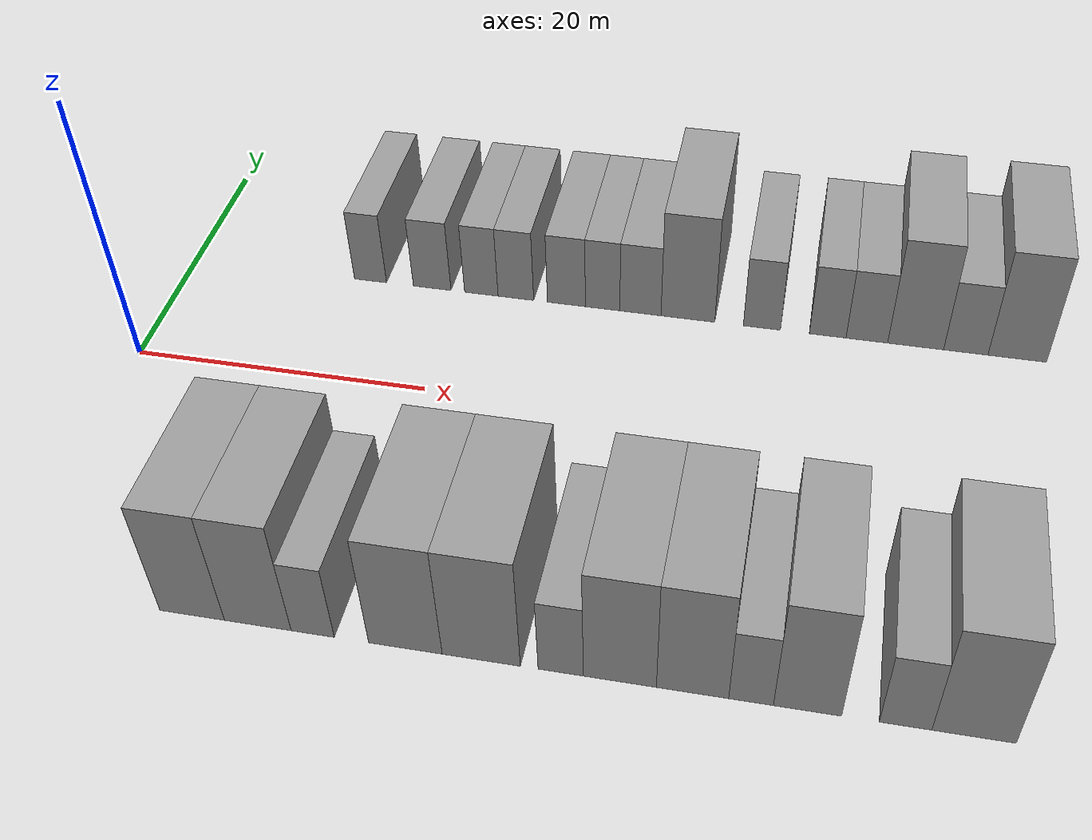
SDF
<sdf version="1.6">
 <world name="default">
  <model name="building_1">
   <static>1</static>
   <pose>13.2014 15.0000 0 0.000000 0.000000 1.570796</pose>
   <link name="link">
    <pose>0 0 3.00 0 0 0</pose>
    <collision name="collision"><geometry><box><size>10.0000 2.4029 6.0000</size></box></geometry></collision>
    <visual name="visual">
     <cast_shadows>0</cast_shadows>
     <geometry><box><size>10.0000 2.4029 6.0000</size></box></geometry>
     <material>
      <script>
       <uri>model://grey_wall/materials/scripts</uri>
       <uri>model://grey_wall/materials/textures</uri>
       <name>vrc/grey_wall</name>
      </script>
     </material>
    </visual>
   </link>
  </model>
  <model name="building_2">
   <static>1</static>
   <pose>17.7954 15.0000 0 0.000000 0.000000 1.570796</pose>
   <link name="link">
    <pose>0 0 3.00 0 0 0</pose>
    <collision name="collision"><geometry><box><size>10.0000 2.7850 6.0000</size></box></geometry></collision>
    <visual name="visual">
     <cast_shadows>0</cast_shadows>
     <geometry><box><size>10.0000 2.7850 6.0000</size></box></geometry>
     <material>
      <script>
       <uri>model://grey_wall/materials/scripts</uri>
       <uri>model://grey_wall/materials/textures</uri>
       <name>vrc/grey_wall</name>
      </script>
     </material>
    </visual>
   </link>
  </model>
  <model name="building_3">
   <static>1</static>
   <pose>21.4154 15.0000 0 0.000000 0.000000 1.570796</pose>
   <link name="link">
    <pose>0 0 3.00 0 0 0</pose>
    <collision name="collision"><geometry><box><size>10.0000 2.4551 6.0000</size></box></geometry></collision>
    <visual name="visual">
     <cast_shadows>0</cast_shadows>
     <geometry><box><size>10.0000 2.4551 6.0000</size></box></geometry>
     <material>
      <script>
       <uri>model://grey_wall/materials/scripts</uri>
       <uri>model://grey_wall/materials/textures</uri>
       <name>vrc/grey_wall</name>
      </script>
     </material>
    </visual>
   </link>
  </model>
  <model name="building_4">
   <static>1</static>
   <pose>23.9385 15.0000 0 0.000000 0.000000 1.570796</pose>
   <link name="link">
    <pose>0 0 3.00 0 0 0</pose>
    <collision name="collision"><geometry><box><size>10.0000 2.5911 6.0000</size></box></geometry></collision>
    <visual name="visual">
     <cast_shadows>0</cast_shadows>
     <geometry><box><size>10.0000 2.5911 6.0000</size></box></geometry>
     <material>
      <script>
       <uri>model://grey_wall/materials/scripts</uri>
       <uri>model://grey_wall/materials/textures</uri>
       <name>vrc/grey_wall</name>
      </script>
     </material>
    </visual>
   </link>
  </model>
  <model name="building_5">
   <static>1</static>
   <pose>27.6037 15.0000 0 0.000000 0.000000 1.570796</pose>
   <link name="link">
    <pose>0 0 3.00 0 0 0</pose>
    <collision name="collision"><geometry><box><size>10.0000 2.7393 6.0000</size></box></geometry></collision>
    <visual name="visual">
     <cast_shadows>0</cast_shadows>
     <geometry><box><size>10.0000 2.7393 6.0000</size></box></geometry>
     <material>
      <script>
       <uri>model://grey_wall/materials/scripts</uri>
       <uri>model://grey_wall/materials/textures</uri>
       <name>vrc/grey_wall</name>
      </script>
     </material>
    </visual>
   </link>
  </model>
  <model name="building_6">
   <static>1</static>
   <pose>30.2066 15.0000 0 0.000000 0.000000 1.570796</pose>
   <link name="link">
    <pose>0 0 3.00 0 0 0</pose>
    <collision name="collision"><geometry><box><size>10.0000 2.4665 6.0000</size></box></geometry></collision>
    <visual name="visual">
     <cast_shadows>0</cast_shadows>
     <geometry><box><size>10.0000 2.4665 6.0000</size></box></geometry>
     <material>
      <script>
       <uri>model://grey_wall/materials/scripts</uri>
       <uri>model://grey_wall/materials/textures</uri>
       <name>vrc/grey_wall</name>
      </script>
     </material>
    </visual>
   </link>
  </model>
  <model name="building_7">
   <static>1</static>
   <pose>32.9014 15.0000 0 0.000000 0.000000 1.570796</pose>
   <link name="link">
    <pose>0 0 3.00 0 0 0</pose>
    <collision name="collision"><geometry><box><size>10.0000 2.9229 6.0000</size></box></geometry></collision>
    <visual name="visual">
     <cast_shadows>0</cast_shadows>
     <geometry><box><size>10.0000 2.9229 6.0000</size></box></geometry>
     <material>
      <script>
       <uri>model://grey_wall/materials/scripts</uri>
       <uri>model://grey_wall/materials/textures</uri>
       <name>vrc/grey_wall</name>
      </script>
     </material>
    </visual>
   </link>
  </model>
  <model name="building_8">
   <static>1</static>
   <pose>36.2609 15.0000 0 0.000000 0.000000 1.570796</pose>
   <link name="link">
    <pose>0 0 4.50 0 0 0</pose>
    <collision name="collision"><geometry><box><size>10.0000 3.7962 9.0000</size></box></geometry></collision>
    <visual name="visual">
     <cast_shadows>0</cast_shadows>
     <geometry><box><size>10.0000 3.7962 9.0000</size></box></geometry>
     <material>
      <script>
       <uri>model://grey_wall/materials/scripts</uri>
       <uri>model://grey_wall/materials/textures</uri>
       <name>vrc/grey_wall</name>
      </script>
     </material>
    </visual>
   </link>
  </model>
  <model name="building_9">
   <static>1</static>
   <pose>41.4479 15.0000 0 0.000000 0.000000 1.570796</pose>
   <link name="link">
    <pose>0 0 3.00 0 0 0</pose>
    <collision name="collision"><geometry><box><size>10.0000 2.5777 6.0000</size></box></geometry></collision>
    <visual name="visual">
     <cast_shadows>0</cast_shadows>
     <geometry><box><size>10.0000 2.5777 6.0000</size></box></geometry>
     <material>
      <script>
       <uri>model://grey_wall/materials/scripts</uri>
       <uri>model://grey_wall/materials/textures</uri>
       <name>vrc/grey_wall</name>
      </script>
     </material>
    </visual>
   </link>
  </model>
  <model name="building_10">
   <static>1</static>
   <pose>45.9956 15.0000 0 0.000000 0.000000 1.570796</pose>
   <link name="link">
    <pose>0 0 3.00 0 0 0</pose>
    <collision name="collision"><geometry><box><size>10.0000 2.5177 6.0000</size></box></geometry></collision>
    <visual name="visual">
     <cast_shadows>0</cast_shadows>
     <geometry><box><size>10.0000 2.5177 6.0000</size></box></geometry>
     <material>
      <script>
       <uri>model://grey_wall/materials/scripts</uri>
       <uri>model://grey_wall/materials/textures</uri>
       <name>vrc/grey_wall</name>
      </script>
     </material>
    </visual>
   </link>
  </model>
  <model name="building_11">
   <static>1</static>
   <pose>48.6783 15.0000 0 0.000000 0.000000 1.570796</pose>
   <link name="link">
    <pose>0 0 3.00 0 0 0</pose>
    <collision name="collision"><geometry><box><size>10.0000 2.8477 6.0000</size></box></geometry></collision>
    <visual name="visual">
     <cast_shadows>0</cast_shadows>
     <geometry><box><size>10.0000 2.8477 6.0000</size></box></geometry>
     <material>
      <script>
       <uri>model://grey_wall/materials/scripts</uri>
       <uri>model://grey_wall/materials/textures</uri>
       <name>vrc/grey_wall</name>
      </script>
     </material>
    </visual>
   </link>
  </model>
  <model name="building_12">
   <static>1</static>
   <pose>51.9933 15.0000 0 0.000000 0.000000 1.570796</pose>
   <link name="link">
    <pose>0 0 4.50 0 0 0</pose>
    <collision name="collision"><geometry><box><size>10.0000 3.7822 9.0000</size></box></geometry></collision>
    <visual name="visual">
     <cast_shadows>0</cast_shadows>
     <geometry><box><size>10.0000 3.7822 9.0000</size></box></geometry>
     <material>
      <script>
       <uri>model://grey_wall/materials/scripts</uri>
       <uri>model://grey_wall/materials/textures</uri>
       <name>vrc/grey_wall</name>
      </script>
     </material>
    </visual>
   </link>
  </model>
  <model name="building_13">
   <static>1</static>
   <pose>55.3688 15.0000 0 0.000000 0.000000 1.570796</pose>
   <link name="link">
    <pose>0 0 3.00 0 0 0</pose>
    <collision name="collision"><geometry><box><size>10.0000 2.9688 6.0000</size></box></geometry></collision>
    <visual name="visual">
     <cast_shadows>0</cast_shadows>
     <geometry><box><size>10.0000 2.9688 6.0000</size></box></geometry>
     <material>
      <script>
       <uri>model://grey_wall/materials/scripts</uri>
       <uri>model://grey_wall/materials/textures</uri>
       <name>vrc/grey_wall</name>
      </script>
     </material>
    </visual>
   </link>
  </model>
  <model name="building_14">
   <static>1</static>
   <pose>58.8022 15.0000 0 0.000000 0.000000 1.570796</pose>
   <link name="link">
    <pose>0 0 4.50 0 0 0</pose>
    <collision name="collision"><geometry><box><size>10.0000 3.8981 9.0000</size></box></geometry></collision>
    <visual name="visual">
     <cast_shadows>0</cast_shadows>
     <geometry><box><size>10.0000 3.8981 9.0000</size></box></geometry>
     <material>
      <script>
       <uri>model://grey_wall/materials/scripts</uri>
       <uri>model://grey_wall/materials/textures</uri>
       <name>vrc/grey_wall</name>
      </script>
     </material>
    </visual>
   </link>
  </model>
  <model name="building_54">
   <static>1</static>
   <pose>11.9435 -15.0000 0 0.000000 0.000000 1.570796</pose>
   <link name="link">
    <pose>0 0 4.50 0 0 0</pose>
    <collision name="collision"><geometry><box><size>10.0000 3.8869 9.0000</size></box></geometry></collision>
    <visual name="visual">
     <cast_shadows>0</cast_shadows>
     <geometry><box><size>10.0000 3.8869 9.0000</size></box></geometry>
     <material>
      <script>
       <uri>model://grey_wall/materials/scripts</uri>
       <uri>model://grey_wall/materials/textures</uri>
       <name>vrc/grey_wall</name>
      </script>
     </material>
    </visual>
   </link>
  </model>
  <model name="building_55">
   <static>1</static>
   <pose>15.8666 -15.0000 0 0.000000 0.000000 1.570796</pose>
   <link name="link">
    <pose>0 0 4.50 0 0 0</pose>
    <collision name="collision"><geometry><box><size>10.0000 3.9593 9.0000</size></box></geometry></collision>
    <visual name="visual">
     <cast_shadows>0</cast_shadows>
     <geometry><box><size>10.0000 3.9593 9.0000</size></box></geometry>
     <material>
      <script>
       <uri>model://grey_wall/materials/scripts</uri>
       <uri>model://grey_wall/materials/textures</uri>
       <name>vrc/grey_wall</name>
      </script>
     </material>
    </visual>
   </link>
  </model>
  <model name="building_56">
   <static>1</static>
   <pose>19.1136 -15.0000 0 0.000000 0.000000 1.570796</pose>
   <link name="link">
    <pose>0 0 3.00 0 0 0</pose>
    <collision name="collision"><geometry><box><size>10.0000 2.5347 6.0000</size></box></geometry></collision>
    <visual name="visual">
     <cast_shadows>0</cast_shadows>
     <geometry><box><size>10.0000 2.5347 6.0000</size></box></geometry>
     <material>
      <script>
       <uri>model://grey_wall/materials/scripts</uri>
       <uri>model://grey_wall/materials/textures</uri>
       <name>vrc/grey_wall</name>
      </script>
     </material>
    </visual>
   </link>
  </model>
  <model name="building_57">
   <static>1</static>
   <pose>24.5048 -15.0000 0 0.000000 0.000000 1.570796</pose>
   <link name="link">
    <pose>0 0 4.50 0 0 0</pose>
    <collision name="collision"><geometry><box><size>10.0000 4.2478 9.0000</size></box></geometry></collision>
    <visual name="visual">
     <cast_shadows>0</cast_shadows>
     <geometry><box><size>10.0000 4.2478 9.0000</size></box></geometry>
     <material>
      <script>
       <uri>model://grey_wall/materials/scripts</uri>
       <uri>model://grey_wall/materials/textures</uri>
       <name>vrc/grey_wall</name>
      </script>
     </material>
    </visual>
   </link>
  </model>
  <model name="building_58">
   <static>1</static>
   <pose>28.8528 -15.0000 0 0.000000 0.000000 1.570796</pose>
   <link name="link">
    <pose>0 0 4.50 0 0 0</pose>
    <collision name="collision"><geometry><box><size>10.0000 4.4482 9.0000</size></box></geometry></collision>
    <visual name="visual">
     <cast_shadows>0</cast_shadows>
     <geometry><box><size>10.0000 4.4482 9.0000</size></box></geometry>
     <material>
      <script>
       <uri>model://grey_wall/materials/scripts</uri>
       <uri>model://grey_wall/materials/textures</uri>
       <name>vrc/grey_wall</name>
      </script>
     </material>
    </visual>
   </link>
  </model>
  <model name="building_59">
   <static>1</static>
   <pose>33.3457 -15.0000 0 0.000000 0.000000 1.570796</pose>
   <link name="link">
    <pose>0 0 3.00 0 0 0</pose>
    <collision name="collision"><geometry><box><size>10.0000 2.5378 6.0000</size></box></geometry></collision>
    <visual name="visual">
     <cast_shadows>0</cast_shadows>
     <geometry><box><size>10.0000 2.5378 6.0000</size></box></geometry>
     <material>
      <script>
       <uri>model://grey_wall/materials/scripts</uri>
       <uri>model://grey_wall/materials/textures</uri>
       <name>vrc/grey_wall</name>
      </script>
     </material>
    </visual>
   </link>
  </model>
  <model name="building_60">
   <static>1</static>
   <pose>36.6359 -15.0000 0 0.000000 0.000000 1.570796</pose>
   <link name="link">
    <pose>0 0 4.50 0 0 0</pose>
    <collision name="collision"><geometry><box><size>10.0000 4.0426 9.0000</size></box></geometry></collision>
    <visual name="visual">
     <cast_shadows>0</cast_shadows>
     <geometry><box><size>10.0000 4.0426 9.0000</size></box></geometry>
     <material>
      <script>
       <uri>model://grey_wall/materials/scripts</uri>
       <uri>model://grey_wall/materials/textures</uri>
       <name>vrc/grey_wall</name>
      </script>
     </material>
    </visual>
   </link>
  </model>
  <model name="building_61">
   <static>1</static>
   <pose>40.6339 -15.0000 0 0.000000 0.000000 1.570796</pose>
   <link name="link">
    <pose>0 0 4.50 0 0 0</pose>
    <collision name="collision"><geometry><box><size>10.0000 3.9534 9.0000</size></box></geometry></collision>
    <visual name="visual">
     <cast_shadows>0</cast_shadows>
     <geometry><box><size>10.0000 3.9534 9.0000</size></box></geometry>
     <material>
      <script>
       <uri>model://grey_wall/materials/scripts</uri>
       <uri>model://grey_wall/materials/textures</uri>
       <name>vrc/grey_wall</name>
      </script>
     </material>
    </visual>
   </link>
  </model>
  <model name="building_62">
   <static>1</static>
   <pose>43.8188 -15.0000 0 0.000000 0.000000 1.570796</pose>
   <link name="link">
    <pose>0 0 3.00 0 0 0</pose>
    <collision name="collision"><geometry><box><size>10.0000 2.4164 6.0000</size></box></geometry></collision>
    <visual name="visual">
     <cast_shadows>0</cast_shadows>
     <geometry><box><size>10.0000 2.4164 6.0000</size></box></geometry>
     <material>
      <script>
       <uri>model://grey_wall/materials/scripts</uri>
       <uri>model://grey_wall/materials/textures</uri>
       <name>vrc/grey_wall</name>
      </script>
     </material>
    </visual>
   </link>
  </model>
  <model name="building_63">
   <static>1</static>
   <pose>46.8546 -15.0000 0 0.000000 0.000000 1.570796</pose>
   <link name="link">
    <pose>0 0 4.50 0 0 0</pose>
    <collision name="collision"><geometry><box><size>10.0000 3.6552 9.0000</size></box></geometry></collision>
    <visual name="visual">
     <cast_shadows>0</cast_shadows>
     <geometry><box><size>10.0000 3.6552 9.0000</size></box></geometry>
     <material>
      <script>
       <uri>model://grey_wall/materials/scripts</uri>
       <uri>model://grey_wall/materials/textures</uri>
       <name>vrc/grey_wall</name>
      </script>
     </material>
    </visual>
   </link>
  </model>
  <model name="building_64">
   <static>1</static>
   <pose>52.0628 -15.0000 0 0.000000 0.000000 1.570796</pose>
   <link name="link">
    <pose>0 0 3.00 0 0 0</pose>
    <collision name="collision"><geometry><box><size>10.0000 2.7612 6.0000</size></box></geometry></collision>
    <visual name="visual">
     <cast_shadows>0</cast_shadows>
     <geometry><box><size>10.0000 2.7612 6.0000</size></box></geometry>
     <material>
      <script>
       <uri>model://grey_wall/materials/scripts</uri>
       <uri>model://grey_wall/materials/textures</uri>
       <name>vrc/grey_wall</name>
      </script>
     </material>
    </visual>
   </link>
  </model>
  <model name="building_65">
   <static>1</static>
   <pose>55.6362 -15.0000 0 0.000000 0.000000 1.570796</pose>
   <link name="link">
    <pose>0 0 4.50 0 0 0</pose>
    <collision name="collision"><geometry><box><size>10.0000 4.3856 9.0000</size></box></geometry></collision>
    <visual name="visual">
     <cast_shadows>0</cast_shadows>
     <geometry><box><size>10.0000 4.3856 9.0000</size></box></geometry>
     <material>
      <script>
       <uri>model://grey_wall/materials/scripts</uri>
       <uri>model://grey_wall/materials/textures</uri>
       <name>vrc/grey_wall</name>
      </script>
     </material>
    </visual>
   </link>
  </model>
 </world>
</sdf>
